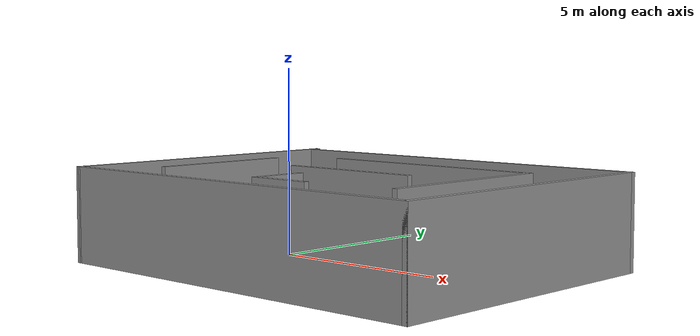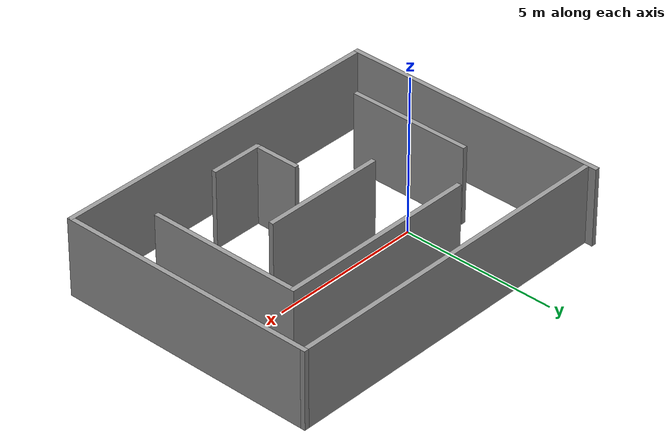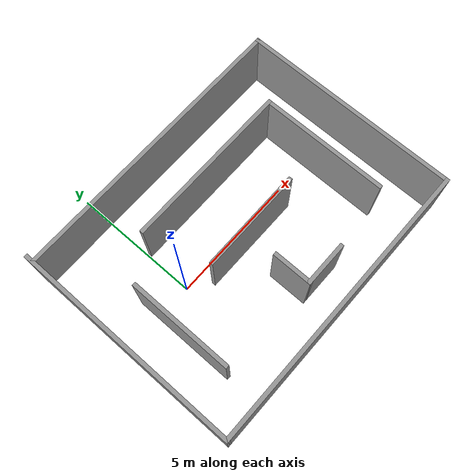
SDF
<?xml version='1.0'?>
<sdf version='1.7'>
  <model name='maze'>
    <pose>2.58764 -0.280982 0 0 -0 0</pose>
    <link name='Wall_16'>
      <collision name='Wall_16_Collision'>
        <geometry>
          <box>
            <size>8.75 0.15 2.5</size>
          </box>
        </geometry>
        <pose>0 0 1.25 0 -0 0</pose>
      </collision>
      <visual name='Wall_16_Visual'>
        <pose>0 0 1.25 0 -0 0</pose>
        <geometry>
          <box>
            <size>8.75 0.15 2.5</size>
          </box>
        </geometry>
        <material>
          <script>
            <uri>file://media/materials/scripts/gazebo.material</uri>
            <name>Gazebo/Grey</name>
          </script>
          <ambient>1 1 1 1</ambient>
        </material>
        <meta>
          <layer>0</layer>
        </meta>
      </visual>
      <pose>-5.55 0 0 0 -0 -1.5708</pose>
    </link>
    <link name='Wall_17'>
      <collision name='Wall_17_Collision'>
        <geometry>
          <box>
            <size>11.25 0.15 2.5</size>
          </box>
        </geometry>
        <pose>0 0 1.25 0 -0 0</pose>
      </collision>
      <visual name='Wall_17_Visual'>
        <pose>0 0 1.25 0 -0 0</pose>
        <geometry>
          <box>
            <size>11.25 0.15 2.5</size>
          </box>
        </geometry>
        <material>
          <script>
            <uri>file://media/materials/scripts/gazebo.material</uri>
            <name>Gazebo/Grey</name>
          </script>
          <ambient>1 1 1 1</ambient>
        </material>
        <meta>
          <layer>0</layer>
        </meta>
      </visual>
      <pose>0 -4.3 0 0 -0 0</pose>
    </link>
    <link name='Wall_18'>
      <collision name='Wall_18_Collision'>
        <geometry>
          <box>
            <size>8.5 0.15 2.5</size>
          </box>
        </geometry>
        <pose>0 0 1.25 0 -0 0</pose>
      </collision>
      <visual name='Wall_18_Visual'>
        <pose>0 0 1.25 0 -0 0</pose>
        <geometry>
          <box>
            <size>8.5 0.15 2.5</size>
          </box>
        </geometry>
        <material>
          <script>
            <uri>file://media/materials/scripts/gazebo.material</uri>
            <name>Gazebo/Grey</name>
          </script>
          <ambient>1 1 1 1</ambient>
        </material>
        <meta>
          <layer>0</layer>
        </meta>
      </visual>
      <pose>5.55 -0.125 0 0 -0 1.5708</pose>
    </link>
    <link name='Wall_19'>
      <collision name='Wall_19_Collision'>
        <geometry>
          <box>
            <size>11.25 0.15 2.5</size>
          </box>
        </geometry>
        <pose>0 0 1.25 0 -0 0</pose>
      </collision>
      <visual name='Wall_19_Visual'>
        <pose>0 0 1.25 0 -0 0</pose>
        <geometry>
          <box>
            <size>11.25 0.15 2.5</size>
          </box>
        </geometry>
        <material>
          <script>
            <uri>file://media/materials/scripts/gazebo.material</uri>
            <name>Gazebo/Grey</name>
          </script>
          <ambient>1 1 1 1</ambient>
        </material>
        <meta>
          <layer>0</layer>
        </meta>
      </visual>
      <pose>0 4.05 0 0 -0 3.14159</pose>
    </link>
    <link name='Wall_21'>
      <collision name='Wall_21_Collision'>
        <geometry>
          <box>
            <size>6.5 0.15 2.5</size>
          </box>
        </geometry>
        <pose>0 0 1.25 0 -0 0</pose>
      </collision>
      <visual name='Wall_21_Visual'>
        <pose>0 0 1.25 0 -0 0</pose>
        <geometry>
          <box>
            <size>6.5 0.15 2.5</size>
          </box>
        </geometry>
        <material>
          <script>
            <uri>file://media/materials/scripts/gazebo.material</uri>
            <name>Gazebo/Grey</name>
          </script>
          <ambient>1 1 1 1</ambient>
        </material>
        <meta>
          <layer>0</layer>
        </meta>
      </visual>
      <pose>0.720731 2.11892 0 0 -0 0</pose>
    </link>
    <link name='Wall_22'>
      <collision name='Wall_22_Collision'>
        <geometry>
          <box>
            <size>5 0.15 2.5</size>
          </box>
        </geometry>
        <pose>0 0 1.25 0 -0 0</pose>
      </collision>
      <visual name='Wall_22_Visual'>
        <pose>0 0 1.25 0 -0 0</pose>
        <geometry>
          <box>
            <size>5 0.15 2.5</size>
          </box>
        </geometry>
        <material>
          <script>
            <uri>file://media/materials/scripts/gazebo.material</uri>
            <name>Gazebo/Grey</name>
          </script>
          <ambient>1 1 1 1</ambient>
        </material>
        <meta>
          <layer>0</layer>
        </meta>
      </visual>
      <pose>3.89573 -0.306083 0 0 -0 -1.5708</pose>
    </link>
    <link name='Wall_24'>
      <collision name='Wall_24_Collision'>
        <geometry>
          <box>
            <size>4 0.15 2.5</size>
          </box>
        </geometry>
        <pose>0 0 1.25 0 -0 0</pose>
      </collision>
      <visual name='Wall_24_Visual'>
        <pose>0 0 1.25 0 -0 0</pose>
        <geometry>
          <box>
            <size>4 0.15 2.5</size>
          </box>
        </geometry>
        <material>
          <script>
            <uri>file://media/materials/scripts/gazebo.material</uri>
            <name>Gazebo/Grey</name>
          </script>
          <ambient>1 1 1 1</ambient>
        </material>
        <meta>
          <layer>0</layer>
        </meta>
      </visual>
      <pose>-3.93178 -0.896625 0 0 -0 -1.5708</pose>
    </link>
    <link name='Wall_27'>
      <collision name='Wall_27_Collision'>
        <geometry>
          <box>
            <size>4 0.15 2.5</size>
          </box>
        </geometry>
        <pose>0 0 1.25 0 -0 0</pose>
      </collision>
      <visual name='Wall_27_Visual'>
        <pose>0 0 1.25 0 -0 0</pose>
        <geometry>
          <box>
            <size>4 0.15 2.5</size>
          </box>
        </geometry>
        <material>
          <script>
            <uri>file://media/materials/scripts/gazebo.material</uri>
            <name>Gazebo/Grey</name>
          </script>
          <ambient>1 1 1 1</ambient>
        </material>
        <meta>
          <layer>0</layer>
        </meta>
      </visual>
      <pose>0.174306 -0.308418 0 0 -0 0</pose>
    </link>
    <link name='Wall_30'>
      <collision name='Wall_30_Collision'>
        <geometry>
          <box>
            <size>1.75 0.15 2.5</size>
          </box>
        </geometry>
        <pose>0 0 1.25 0 -0 0</pose>
      </collision>
      <visual name='Wall_30_Visual'>
        <pose>0 0 1.25 0 -0 0</pose>
        <geometry>
          <box>
            <size>1.75 0.15 2.5</size>
          </box>
        </geometry>
        <material>
          <script>
            <uri>file://media/materials/scripts/gazebo.material</uri>
            <name>Gazebo/Grey</name>
          </script>
          <ambient>1 1 1 1</ambient>
        </material>
        <meta>
          <layer>0</layer>
        </meta>
      </visual>
      <pose>0.597172 -3.07307 0 0 -0 0</pose>
    </link>
    <link name='Wall_32'>
      <collision name='Wall_32_Collision'>
        <geometry>
          <box>
            <size>1.54268 0.15 2.5</size>
          </box>
        </geometry>
        <pose>0 0 1.25 0 -0 0</pose>
      </collision>
      <visual name='Wall_32_Visual'>
        <pose>0 0 1.25 0 -0 0</pose>
        <geometry>
          <box>
            <size>1.54268 0.15 2.5</size>
          </box>
        </geometry>
        <material>
          <script>
            <uri>file://media/materials/scripts/gazebo.material</uri>
            <name>Gazebo/Grey</name>
          </script>
          <ambient>1 1 1 1</ambient>
        </material>
        <meta>
          <layer>0</layer>
        </meta>
      </visual>
      <pose>-0.202828 -2.37673 0 0 -0 -1.5708</pose>
    </link>
    <static>1</static>
  </model>
</sdf>
